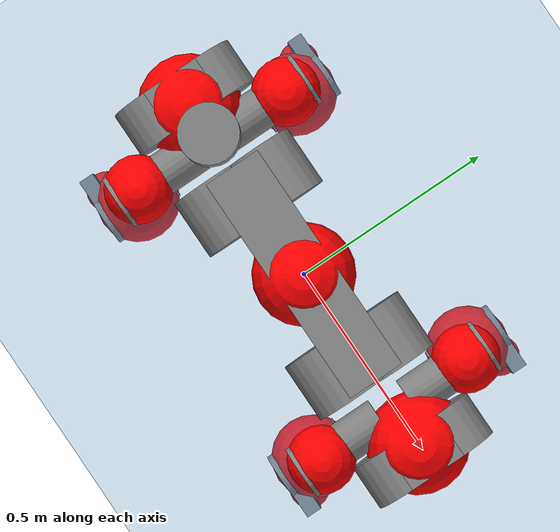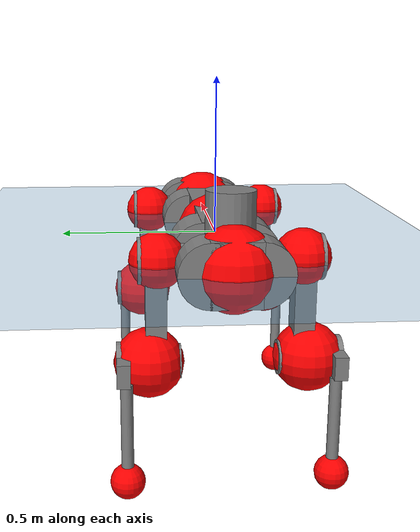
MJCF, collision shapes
<mujoco model="anymal_c">
  <compiler angle="radian" assetdir="assets" balanceinertia="true" inertiafromgeom="false"/>

  <option timestep="0.005" density="1.2" viscosity="2e-05"/>

  <size nkey="1"/>

  <visual>
    <quality shadowsize="8192"/>
    <map shadowclip="0.5"/>
  </visual>

  <default>
    <default class="/">
      <material specular="0" shininess="0.25"/>
      <geom contype="0" conaffinity="0" group="1" solref="-1000 -80"/>
      <site size="0.01 0.005 0.005" group="5"/>
      <general forcelimited="true" forcerange="-80 80" biastype="affine" gainprm="80" biasprm="0 -80 -2"/>
      <default class="anymal_c">
        <joint armature="0.01" damping="0.01" frictionloss="0.1"/>
        <default class="visual">
          <geom type="mesh" group="2"/>
          <default class="visual_zflip"/>
        </default>
        <default class="collision">
          <geom type="cylinder" group="3"/>
          <default class="foot">
            <geom size="0.03 0 0" type="sphere" condim="6" priority="1" friction="0.8 0.02 0.01" solimp="0.015 1 0.03"/>
          </default>
        </default>
      </default>
      <default class="reward_collision_sphere">
        <geom group="5" rgba="1 0 0 1"/>
      </default>
    </default>
  </default>

  <asset>
    <texture type="skybox" colorspace="auto" name="//unnamed_texture_0" builtin="gradient" rgb1="0.95 0.95 0.95" rgb2="0.95 0.95 0.95" width="100" height="600"/>
    <texture type="2d" colorspace="auto" name="texplane" builtin="checker" rgb1="0.345 0.575 0.748" rgb2="0.345 0.575 0.748" markrgb="1 1 1" width="512" height="512"/>
    <texture type="2d" colorspace="linear" name="base" file="base.png"/>
    <texture type="2d" colorspace="linear" name="top_shell" file="top_shell.png"/>
    <texture type="2d" colorspace="linear" name="bottom_shell" file="bottom_shell.png"/>
    <texture type="2d" colorspace="linear" name="remote" file="remote.png"/>
    <texture type="2d" colorspace="linear" name="hatch" file="hatch.png"/>
    <texture type="2d" colorspace="linear" name="handle" file="handle.png"/>
    <texture type="2d" colorspace="linear" name="face" file="face.png"/>
    <texture type="2d" colorspace="linear" name="battery" file="battery.png"/>
    <texture type="2d" colorspace="linear" name="lidar_cage" file="lidar_cage.png"/>
    <texture type="2d" colorspace="linear" name="depth_camera" file="depth_camera.png"/>
    <texture type="2d" colorspace="linear" name="wide_angle_camera" file="wide_angle_camera.png"/>
    <texture type="2d" colorspace="linear" name="lidar" file="lidar.png"/>
    <texture type="2d" colorspace="linear" name="drive" file="drive.png"/>
    <texture type="2d" colorspace="linear" name="hip_l" file="hip_l.png"/>
    <texture type="2d" colorspace="linear" name="shank_l" file="shank_l.png"/>
    <texture type="2d" colorspace="linear" name="foot" file="foot.png"/>
    <texture type="2d" colorspace="linear" name="thigh" file="thigh.png"/>
    <texture type="2d" colorspace="linear" name="shank_r" file="shank_r.png"/>
    <texture type="2d" colorspace="linear" name="hip_r" file="hip_r.png"/>
    <material name="MatPlane" class="/" texture="texplane" texuniform="true" texrepeat="2 2" specular="0.9" shininess="0.5"/>
    <material name="black_plastic" class="/" rgba="0.007 0.007 0.007 1"/>
    <material name="green" class="/" rgba="0.052 0.178 0.033 1"/>
    <material name="red" class="/" rgba="0.178 0.006 0.005 1"/>
    <material name="yellow" class="/" rgba="0.178 0.119 0.006 1"/>
    <material name="lwl" class="/" rgba="0.8 0.8 0.8 1"/>
    <material name="base" class="/" texture="base"/>
    <material name="top_shell" class="/" texture="top_shell"/>
    <material name="bottom_shell" class="/" texture="bottom_shell"/>
    <material name="hip_l" class="/" texture="hip_l"/>
    <material name="thigh" class="/" texture="thigh"/>
    <material name="shank_l" class="/" texture="shank_l"/>
    <material name="foot" class="/" texture="foot"/>
    <material name="hip_r" class="/" texture="hip_r"/>
    <material name="shank" class="/" texture="shank_r"/>
    <material name="hatch" class="/" texture="hatch"/>
    <material name="remote" class="/" texture="remote"/>
    <material name="handle" class="/" texture="handle"/>
    <material name="face" class="/" texture="face"/>
    <material name="depth_camera" class="/" texture="depth_camera"/>
    <material name="wide_angle_camera" class="/" texture="wide_angle_camera"/>
    <material name="battery" class="/" texture="battery"/>
    <material name="lidar_cage" class="/" texture="lidar_cage"/>
    <material name="lidar" class="/" texture="lidar"/>
    <material name="drive" class="/" texture="drive"/>
    <mesh name="base_0" class="/" file="base_0.obj"/>
    <mesh name="base_1" class="/" file="base_1.obj"/>
    <mesh name="base_2" class="/" file="base_2.obj"/>
    <mesh name="base_3" class="/" file="base_3.obj"/>
    <mesh name="base_4" class="/" file="base_4.obj"/>
    <mesh name="base_5" class="/" file="base_5.obj"/>
    <mesh name="top_shell" class="/" file="top_shell.obj"/>
    <mesh name="bottom_shell" class="/" file="bottom_shell.obj"/>
    <mesh name="remote" class="/" file="remote.obj"/>
    <mesh name="handle" class="/" file="handle.obj"/>
    <mesh name="face" class="/" file="face.obj"/>
    <mesh name="wide_angle_camera" class="/" file="wide_angle_camera.obj"/>
    <mesh name="depth_camera" class="/" file="depth_camera.obj"/>
    <mesh name="battery" class="/" file="battery.obj"/>
    <mesh name="lidar_cage" class="/" file="lidar_cage.obj"/>
    <mesh name="lidar" class="/" file="lidar.obj"/>
    <mesh name="drive" class="/" file="drive.obj"/>
    <mesh name="hip_l" class="/" file="hip_l.obj"/>
    <mesh name="thigh" class="/" file="thigh.obj"/>
    <mesh name="shank_l" class="/" file="shank_l.obj"/>
    <mesh name="foot" class="/" file="foot.obj"/>
    <mesh name="hip_r" class="/" file="hip_r.obj"/>
    <mesh name="hatch" class="/" file="hatch.obj"/>
    <mesh name="shank_r" class="/" file="shank_r.obj"/>
  </asset>

  <worldbody>
    <geom name="floor" class="/" size="100 100 0.125" type="plane" group="0" material="MatPlane"/>
    <light name="toplight_shadow" class="/" pos="0 0 5" dir="0.0990148 0.0990148 -0.990148" type="directional" ambient="0.04 0.04 0.04" diffuse="0.55 0.55 0.55" specular="0.12 0.12 0.12"/>
    <light name="toplight_fill" class="/" pos="0 0 5" dir="0.0990148 0.0990148 -0.990148" type="directional" castshadow="false" ambient="0.04 0.04 0.04" diffuse="0.3 0.3 0.3" specular="0.08 0.08 0.08"/>
    <body name="trunk" childclass="anymal_c" pos="-0.000299403 -0.000103245 0.00126836" quat="0.999999 0.000749857 0.000175355 0.000666247">
      <inertial pos="0.00147229 -0.00247155 0.0503831" quat="0.499612 0.499674 0.500627 0.500086" mass="21.7631" diaginertia="0.896905 0.524835 0.304451"/>
      <joint name="//unnamed_joint_0" type="free" armature="0" damping="0" frictionloss="0"/>
      <geom name="//unnamed_geom_1" class="visual" material="green" mesh="base_0"/>
      <geom name="//unnamed_geom_2" class="visual" material="yellow" mesh="base_1"/>
      <geom name="//unnamed_geom_3" class="visual" material="red" mesh="base_2"/>
      <geom name="//unnamed_geom_4" class="visual" material="black_plastic" mesh="base_3"/>
      <geom name="//unnamed_geom_5" class="visual" material="lwl" mesh="base_4"/>
      <geom name="//unnamed_geom_6" class="visual" material="base" mesh="base_5"/>
      <geom name="trunk_1" class="collision" size="0.300645 0.0725695 0.0933036" type="box"/>
      <geom name="trunk_2" class="collision" size="0.0933036 0.0751612" pos="0.23284 0.0677258 0" quat="0.707107 0 0.707107 0"/>
      <geom name="trunk_3" class="collision" size="0.0933036 0.0751612" pos="-0.23284 0.0677258 0" quat="0.707107 0 0.707107 0"/>
      <geom name="trunk_4" class="collision" size="0.0933036 0.0751612" pos="0.23284 -0.0677258 0" quat="0.707107 0 0.707107 0"/>
      <geom name="trunk_5" class="collision" size="0.0933036 0.0751612" pos="-0.23284 -0.0677258 0" quat="0.707107 0 0.707107 0"/>
      <geom name="//unnamed_geom_12" class="visual" material="top_shell" mesh="top_shell"/>
      <geom name="//unnamed_geom_13" class="visual" material="bottom_shell" mesh="bottom_shell"/>
      <geom name="//unnamed_geom_14" class="visual" material="remote" mesh="remote"/>
      <geom name="//unnamed_geom_15" class="visual" material="handle" mesh="handle"/>
      <geom name="//unnamed_geom_16" class="visual" pos="0.443733 0 0" quat="1 0 0 0" material="face" mesh="face"/>
      <geom name="trunk_6" class="collision" size="0.0570189 0.0725695 0.0933036" pos="0.502612 0 0" type="box"/>
      <geom name="//unnamed_geom_18" class="collision" size="0.0933036 0.0570189" pos="0.502612 0.0677258 0" quat="0.707107 0 0.707107 0"/>
      <geom name="//unnamed_geom_19" class="collision" size="0.0933036 0.0570189" pos="0.502612 -0.0677258 0" quat="0.707107 0 0.707107 0"/>
      <geom name="//unnamed_geom_20" class="visual" pos="0.494209 0 -0.0313166" quat="0.965926 0 0.258819 0" material="depth_camera" mesh="depth_camera"/>
      <geom name="//unnamed_geom_21" class="visual" pos="0.54918 0 0.0160491" material="wide_angle_camera" mesh="wide_angle_camera"/>
      <geom name="//unnamed_geom_22" class="visual_zflip" pos="-0.443733 0 0" quat="0 0 0 1" material="face" mesh="face"/>
      <geom name="trunk_7" class="collision" size="0.0570189 0.0725695 0.0933036" pos="-0.502612 0 0" quat="0 0 0 1" type="box"/>
      <geom name="//unnamed_geom_24" class="collision" size="0.0933036 0.0570189" pos="-0.502612 -0.0677258 0" quat="0 -0.707107 0 0.707107"/>
      <geom name="//unnamed_geom_25" class="collision" size="0.0933036 0.0570189" pos="-0.502612 0.0677258 0" quat="0 -0.707107 0 0.707107"/>
      <geom name="//unnamed_geom_26" class="visual" pos="-0.494209 0 -0.0313166" quat="0 -0.258819 0 0.965926" material="depth_camera" mesh="depth_camera"/>
      <geom name="//unnamed_geom_27" class="visual_zflip" pos="-0.54918 0 0.0160491" quat="0 0 0 1" material="wide_angle_camera" mesh="wide_angle_camera"/>
      <geom name="//unnamed_geom_28" class="visual" material="battery" mesh="battery"/>
      <geom name="//unnamed_geom_29" class="visual" pos="0 0.0726242 0.0311322" quat="0.683013 -0.183013 0.183013 0.683013" material="depth_camera" mesh="depth_camera"/>
      <geom name="//unnamed_geom_30" class="visual" pos="0 -0.0726242 0.0311322" quat="0.683013 0.183013 0.183013 -0.683013" material="depth_camera" mesh="depth_camera"/>
      <geom name="//unnamed_geom_31" class="visual" pos="-0.389672 0 0.078798" quat="1 0 0 0" material="lidar_cage" mesh="lidar_cage"/>
      <geom name="trunk_8" class="collision" size="0.0725695 0.0622024" pos="-0.389672 0 0.143123"/>
      <geom name="//unnamed_geom_33" class="visual" pos="-0.389672 -4.04723e-05 0.15245" quat="0.707107 0 0 -0.707107" material="lidar" mesh="lidar"/>
      <geom name="//unnamed_geom_34" class="visual" pos="0.321051 0.100658 -1.80385e-09" quat="0.258819 0.965926 0 0" material="drive" mesh="drive"/>
      <geom name="//unnamed_geom_35" class="visual" pos="0.321051 -0.100658 1.80385e-09" quat="0.258819 -0.965926 0 0" material="drive" mesh="drive"/>
      <geom name="//unnamed_geom_36" class="visual" pos="-0.321051 0.100658 1.80385e-09" quat="0 0 0.965926 -0.258819" material="drive" mesh="drive"/>
      <geom name="//unnamed_geom_37" class="visual" pos="-0.321051 -0.100658 -1.80385e-09" quat="0 0 -0.965926 -0.258819" material="drive" mesh="drive"/>
      <geom name="//unnamed_geom_38" class="visual" pos="0.124181 0 0.078262" quat="1 0 0 0" material="hatch" mesh="hatch"/>
      <geom name="//unnamed_geom_39" class="reward_collision_sphere" size="0.124405"/>
      <geom name="//unnamed_geom_40" class="reward_collision_sphere" size="0.124405" pos="0.481737 0 0"/>
      <geom name="//unnamed_geom_41" class="reward_collision_sphere" size="0.124405" pos="-0.481737 0 0"/>
      <site name="imu" pos="0.276794 0.00699957 0.0390572" size="0.0103671"/>
      <camera name="track" pos="0 -1.93502 0" quat="0.707107 0.707107 0 0" mode="trackcom"/>
      <camera name="ego_camera" pos="0.481737 0 -0.0428833" quat="-0.5 -0.5 0.5 0.5"/>
      <body name="LF_HIP" pos="0.318661 0.0979754 -0.00146929" quat="0.258539 0.966001 0.000365817 0.000137785">
        <inertial pos="0.0606479 -0.0173309 -0.00770437" quat="-0.127049 0.709805 -0.134341 0.679697" mass="3.14481" diaginertia="0.00815993 0.00397058 0.00457655"/>
        <joint name="LF_HAA" pos="0 0 0" axis="0.999995 0.00296418 0.00127375" range="-0.722888 0.525576" armature="0.0101507" damping="0.0242462" frictionloss="0.089029"/>
        <geom name="//unnamed_geom_42" class="visual" pos="0 -0.000106113 1.74289e-05" quat="0.258819 -0.965926 0 0" material="hip_l" mesh="hip_l"/>
        <geom name="//unnamed_geom_43" class="visual" pos="0.0641246 -0.0763814 -0.0448723" quat="0.183013 -0.683013 0.683013 0.183013" material="drive" mesh="drive"/>
        <geom name="//unnamed_geom_44" class="collision" size="0.0518353 0.0725695" pos="0.0641246 -0.0115712 -0.00740272" quat="-0.353553 -0.612372 0.612372 -0.353553"/>
        <body name="LF_THIGH" pos="0.0619621 -0.0681451 -0.0434179" quat="0.183301 -0.682333 0.68339 0.183851">
          <inertial pos="0.0325476 2.13475e-05 -0.260835" quat="0.992826 -0.0168048 -0.0763785 0.0904411" mass="3.34168" diaginertia="0.0432204 0.0251792 0.00606147"/>
          <joint name="LF_HFE" pos="0 0 0" axis="0.999999 -0.000521425 0.00114494" stiffness="0.00439595" range="-3.0936 3.19431" armature="0.010221" damping="0.0217631" frictionloss="0.0902581"/>
          <geom name="//unnamed_geom_45" class="visual" pos="0.00204962 3.22971e-06 0" quat="0.707107 0 0 -0.707107" material="thigh" mesh="thigh"/>
          <geom name="//unnamed_geom_46" class="collision" size="0.0673859 0.0414683" pos="0.0428211 0 0" quat="0.5 0.5 -0.5 -0.5"/>
          <geom name="//unnamed_geom_47" class="collision" size="0.0388765 0.0311012 0.146501" pos="0.0321158 0 -0.1515" quat="0.707107 0 0 -0.707107" type="box"/>
          <geom name="//unnamed_geom_48" class="visual" pos="0.107374 0 -0.305543" quat="1 0 0 0" material="drive" mesh="drive"/>
          <geom name="//unnamed_geom_49" class="collision" size="0.0518353 0.0725695" pos="0.032437 0 -0.305543" quat="0.707107 0 0.707107 0"/>
          <geom name="//unnamed_geom_50" class="reward_collision_sphere" size="0.0829365" pos="0.0267632 0 0"/>
          <body name="LF_SHANK" pos="0.108553 0.00247009 -0.30407" quat="1 5.59644e-05 8.79833e-05 -6.06308e-05">
            <inertial pos="0.00533806 -0.0594525 -0.088702" quat="0.992894 -0.116174 -0.00244318 -0.0256616" mass="0.66476" diaginertia="0.0139268 0.00778977 0.00159203"/>
            <joint name="LF_KFE" pos="0 0 0" axis="0.999983 0.0033072 -0.00479764" range="-3.08449 3.14928" armature="0.0109478" damping="0.00396263" frictionloss="0.105832"/>
            <geom name="//unnamed_geom_51" class="visual" pos="0.000668335 0.00356359 0" quat="0.707107 0 0 -0.707107" material="shank_l" mesh="shank_l"/>
            <geom name="LF_kfe_act" class="collision" size="0.0622024 0.0207341" pos="0.0214105 0 0" quat="0.5 0.5 -0.5 -0.5"/>
            <geom name="//unnamed_geom_53" class="collision" size="0.0596096 0.0349888 0.0196974" pos="0.0214105 -0.0556309 0" quat="0.5 0.5 -0.5 -0.5" type="box"/>
            <geom name="//unnamed_geom_54" class="visual" pos="0.0139702 -0.0839442 -0.362331" quat="0.382683 0 0 -0.92388" material="foot" mesh="foot"/>
            <geom name="LF_calf" class="collision" size="0.0181424 0.146437" pos="0.0139704 -0.0850926 -0.181166" quat="0.707107 0 0 -0.707107"/>
            <geom name="LF_foot" class="foot" size="0.0307982" pos="0.0139704 -0.0850926 -0.33821" quat="0.707107 0 0 -0.707107"/>
            <geom name="//unnamed_geom_57" class="reward_collision_sphere" size="0.103671" pos="-0.0535264 0 0"/>
            <geom name="//unnamed_geom_58" class="reward_collision_sphere" size="0.0518353" pos="0.0139704 -0.0850926 -0.33821"/>
            <site name="LF_foot" class="foot" pos="0.0139704 -0.0850926 -0.33821" quat="0.707107 0 0 -0.707107" size="0.0103671"/>
          </body>
        </body>
      </body>
      <body name="RF_HIP" pos="0.319376 -0.101196 1.38918e-06" quat="0.25871 -0.965955 5.58278e-05 0.00011889">
        <inertial pos="0.05804 0.0139482 -0.0117867" quat="0.134171 0.684705 0.12539 0.705305" mass="3.10625" diaginertia="0.00788177 0.004244 0.0044547"/>
        <joint name="RF_HAA" pos="0 0 0" axis="0.999929 0.00685308 -0.00979698" range="-0.509288 0.724601" armature="0.0106891" damping="0" frictionloss="0.111201"/>
        <geom name="//unnamed_geom_59" class="visual" pos="0 0.000106112 1.74289e-05" quat="0.258819 0.965926 0 0" material="hip_r" mesh="hip_r"/>
        <geom name="//unnamed_geom_60" class="visual" pos="0.0641246 0.0763814 -0.0448723" quat="0.183013 0.683013 0.683013 -0.183013" material="drive" mesh="drive"/>
        <geom name="//unnamed_geom_61" class="collision" size="0.0518353 0.0725695" pos="0.0641246 0.0115712 -0.00740272" quat="-0.353553 0.612372 0.612372 0.353553"/>
        <body name="RF_THIGH" pos="0.0668815 0.068236 -0.0472929" quat="0.182636 0.683507 0.682867 -0.182086">
          <inertial pos="0.0350781 -0.000947679 -0.265701" quat="0.994135 -0.000328483 -0.0699405 0.0824901" mass="3.56142" diaginertia="0.0413136 0.0246551 0.00611618"/>
          <joint name="RF_HFE" pos="0 0 0" axis="1 -7.03299e-08 3.11796e-07" range="-3.11901 3.14913" armature="0.00904648" damping="0.0106947" frictionloss="0.113261"/>
          <geom name="//unnamed_geom_62" class="visual" pos="0.00204962 3.22971e-06 0" quat="0.707107 0 0 -0.707107" material="thigh" mesh="thigh"/>
          <geom name="//unnamed_geom_63" class="collision" size="0.0673859 0.0414683" pos="0.0428211 0 0" quat="0.5 0.5 0.5 0.5"/>
          <geom name="//unnamed_geom_64" class="collision" size="0.0388765 0.0311012 0.146501" pos="0.0321158 0 -0.1515" quat="0.707107 0 0 0.707107" type="box"/>
          <geom name="//unnamed_geom_65" class="visual" pos="0.107374 0 -0.305543" quat="1 0 0 0" material="drive" mesh="drive"/>
          <geom name="//unnamed_geom_66" class="collision" size="0.0518353 0.0725695" pos="0.032437 0 -0.305543" quat="0.707107 0 0.707107 0"/>
          <geom name="//unnamed_geom_67" class="reward_collision_sphere" size="0.0829365" pos="0.0267632 0 0"/>
          <body name="RF_SHANK" pos="0.104312 0.000749805 -0.306386" quat="0.999999 -0.00128156 -0.000157749 2.85253e-05">
            <inertial pos="0.0032465 0.0594001 -0.0862148" quat="0.992259 0.119858 0.000908425 0.0324814" mass="0.700837" diaginertia="0.0151168 0.00789102 0.00164783"/>
            <joint name="RF_KFE" pos="0 0 0" axis="0.999996 0.0028689 -0.000516688" range="-3.17848 3.08268" armature="0.011932" damping="0.019128" frictionloss="0.114372"/>
            <geom name="//unnamed_geom_68" class="visual" pos="0.000668331 -0.00356359 0" quat="0.707107 0 0 0.707107" material="shank" mesh="shank_r"/>
            <geom name="RF_kfe_act" class="collision" size="0.0622024 0.0207341" pos="0.0214105 0 0" quat="0.5 0.5 0.5 0.5"/>
            <geom name="//unnamed_geom_70" class="collision" size="0.0596096 0.0349888 0.0196974" pos="0.0214105 0.0556309 0" quat="0.5 0.5 0.5 0.5" type="box"/>
            <geom name="//unnamed_geom_71" class="visual" pos="0.0139705 0.0839442 -0.362331" quat="0.382683 0 0 0.92388" material="foot" mesh="foot"/>
            <geom name="RF_calf" class="collision" size="0.0181424 0.146437" pos="0.0139704 0.0850926 -0.181166" quat="0.707107 0 0 0.707107"/>
            <geom name="RF_foot" class="foot" size="0.0279228" pos="0.0139704 0.0850926 -0.33821" quat="0.707107 0 0 0.707107"/>
            <geom name="//unnamed_geom_74" class="reward_collision_sphere" size="0.103671" pos="-0.0535264 0 0"/>
            <geom name="//unnamed_geom_75" class="reward_collision_sphere" size="0.0518353" pos="0.0139704 0.0850926 -0.33821"/>
            <site name="RF_foot" class="foot" pos="0.0139704 0.0850926 -0.33821" quat="0.707107 0 0 0.707107" size="0.0103671"/>
          </body>
        </body>
      </body>
      <body name="LH_HIP" pos="-0.318222 0.0983256 -0.00168818" quat="0.000275977 0.00020063 0.965933 -0.258792">
        <inertial pos="0.0607193 0.0174001 -0.0107255" quat="0.129284 0.68851 0.125718 0.702449" mass="3.16469" diaginertia="0.00854141 0.00427963 0.0046234"/>
        <joint name="LH_HAA" pos="0 0 0" axis="0.999896 -0.0144451 0.00014704" range="-0.500095 0.751874" armature="0.0110475" damping="0.000571212" frictionloss="0.102674"/>
        <geom name="//unnamed_geom_76" class="visual" pos="0 0.000106112 1.74289e-05" quat="-0.258819 -0.965926 0 0" material="hip_r" mesh="hip_r"/>
        <geom name="//unnamed_geom_77" class="visual" pos="0.0641246 0.0763814 -0.0448723" quat="0.183013 0.683013 0.683013 -0.183013" material="drive" mesh="drive"/>
        <geom name="//unnamed_geom_78" class="collision" size="0.0518353 0.0725695" pos="0.0641246 0.0115712 -0.00740272" quat="-0.353553 0.612372 0.612372 0.353553"/>
        <body name="LH_THIGH" pos="0.0631251 0.0686291 -0.0437521" quat="0.183151 0.683179 0.682761 -0.183195">
          <inertial pos="0.0318579 0.000978933 -0.265078" quat="0.992499 -0.00398841 -0.0820116 0.0905779" mass="3.22647" diaginertia="0.0402749 0.0253062 0.00582029"/>
          <joint name="LH_HFE" pos="0 0 0" axis="0.999998 -0.000641924 -0.0016844" stiffness="0.00885872" range="-3.19059 3.08343" armature="0.010163" damping="0" frictionloss="0.105357"/>
          <geom name="//unnamed_geom_79" class="visual" pos="0.00204962 3.22971e-06 0" quat="0.707107 0 0 -0.707107" material="thigh" mesh="thigh"/>
          <geom name="//unnamed_geom_80" class="collision" size="0.0673859 0.0414683" pos="0.0428211 0 0" quat="0.5 0.5 -0.5 -0.5"/>
          <geom name="//unnamed_geom_81" class="collision" size="0.0388765 0.0311012 0.146501" pos="0.0321158 0 -0.1515" quat="0.707107 0 0 -0.707107" type="box"/>
          <geom name="//unnamed_geom_82" class="visual" pos="0.107374 0 -0.305543" quat="1 0 0 0" material="drive" mesh="drive"/>
          <geom name="//unnamed_geom_83" class="collision" size="0.0518353 0.0725695" pos="0.032437 0 -0.305543" quat="0.707107 0 0.707107 0"/>
          <geom name="//unnamed_geom_84" class="reward_collision_sphere" size="0.0829365" pos="0.0267632 0 0"/>
          <body name="LH_SHANK" pos="0.106157 0.000454806 -0.307222" quat="1 3.84635e-05 2.6727e-05 -2.68709e-06">
            <inertial pos="0.00824338 0.0616352 -0.0874782" quat="0.994221 0.103379 0.00352234 0.0287071" mass="0.666831" diaginertia="0.013971 0.00818591 0.00162352"/>
            <joint name="LH_KFE" pos="0 0 0" axis="0.999999 0.000650068 -0.00103372" range="-3.09251 3.08304" armature="0.0114757" damping="0.0199618" frictionloss="0.0899032"/>
            <geom name="//unnamed_geom_85" class="visual" pos="0.000668331 -0.00356359 0" quat="-0.707107 0 0 -0.707107" material="shank" mesh="shank_r"/>
            <geom name="LH_kfe_act" class="collision" size="0.0622024 0.0207341" pos="0.0214105 0 0" quat="0.5 0.5 -0.5 -0.5"/>
            <geom name="//unnamed_geom_87" class="collision" size="0.0596096 0.0349888 0.0196974" pos="0.0214105 0.0556309 0" quat="0.5 0.5 -0.5 -0.5" type="box"/>
            <geom name="//unnamed_geom_88" class="visual" pos="0.0139705 0.0839442 -0.362331" quat="-0.382683 0 0 -0.92388" material="foot" mesh="foot"/>
            <geom name="LH_calf" class="collision" size="0.0181424 0.146437" pos="0.0139704 0.0850926 -0.181166" quat="0.707107 0 0 -0.707107"/>
            <geom name="LH_foot" class="foot" size="0.0355395" pos="0.0139704 0.0850926 -0.33821" quat="0.707107 0 0 -0.707107"/>
            <geom name="//unnamed_geom_91" class="reward_collision_sphere" size="0.103671" pos="-0.0535264 0 0"/>
            <geom name="//unnamed_geom_92" class="reward_collision_sphere" size="0.0518353" pos="0.0139704 0.0850926 -0.33821"/>
            <site name="LH_foot" class="foot" pos="0.0139704 0.0850926 -0.33821" quat="0.707107 0 0 -0.707107" size="0.0103671"/>
          </body>
        </body>
      </body>
      <body name="RH_HIP" pos="-0.319807 -0.101727 0.00224546" quat="0.000121047 4.36898e-05 -0.965975 -0.258634">
        <inertial pos="0.0579766 -0.0124509 -0.0108195" quat="-0.125052 0.71255 -0.133514 0.677354" mass="3.14754" diaginertia="0.00807419 0.00412224 0.00460074"/>
        <joint name="RH_HAA" pos="0 0 0" axis="0.999934 0.0113938 -0.00150517" range="-0.768995 0.543193" armature="0.00943256" damping="0" frictionloss="0.102616"/>
        <geom name="//unnamed_geom_93" class="visual" pos="0 -0.000106113 1.74289e-05" quat="-0.258819 0.965926 0 0" material="hip_l" mesh="hip_l"/>
        <geom name="//unnamed_geom_94" class="visual" pos="0.0641246 -0.0763814 -0.0448723" quat="-0.183013 0.683013 -0.683013 -0.183013" material="drive" mesh="drive"/>
        <geom name="//unnamed_geom_95" class="collision" size="0.0518353 0.0725695" pos="0.0641246 -0.0115712 -0.00740272" quat="0.353553 0.612372 -0.612372 0.353553"/>
        <body name="RH_THIGH" pos="0.0657098 -0.0684196 -0.0465899" quat="-0.182787 0.682324 -0.683902 -0.182487">
          <inertial pos="0.0326816 0.00253569 -0.263083" quat="0.993137 -0.00445343 -0.0805434 0.0846866" mass="3.18672" diaginertia="0.0396189 0.0247716 0.00579229"/>
          <joint name="RH_HFE" pos="0 0 0" axis="0.999998 0.00204644 -0.000178287" range="-3.0875 3.13247" armature="0.0106849" damping="0.0193322" frictionloss="0.101804"/>
          <geom name="//unnamed_geom_96" class="visual" pos="0.00204962 3.22971e-06 0" quat="0.707107 0 0 -0.707107" material="thigh" mesh="thigh"/>
          <geom name="//unnamed_geom_97" class="collision" size="0.0673859 0.0414683" pos="0.0428211 0 0" quat="0.5 0.5 0.5 0.5"/>
          <geom name="//unnamed_geom_98" class="collision" size="0.0388765 0.0311012 0.146501" pos="0.0321158 0 -0.1515" quat="0.707107 0 0 0.707107" type="box"/>
          <geom name="//unnamed_geom_99" class="visual" pos="0.107374 0 -0.305543" quat="1 0 0 0" material="drive" mesh="drive"/>
          <geom name="//unnamed_geom_100" class="collision" size="0.0518353 0.0725695" pos="0.032437 0 -0.305543" quat="0.707107 0 0.707107 0"/>
          <geom name="//unnamed_geom_101" class="reward_collision_sphere" size="0.0829365" pos="0.0267632 0 0"/>
          <body name="RH_SHANK" pos="0.106835 0.00255605 -0.305574" quat="0.999999 -5.60875e-05 -0.00031733 -0.000999598">
            <inertial pos="0.008634 -0.0610936 -0.0860461" quat="0.992249 -0.121522 -0.0134195 -0.0222251" mass="0.659444" diaginertia="0.0138617 0.00783166 0.0015371"/>
            <joint name="RH_KFE" pos="0 0 0" axis="0.999986 0.0032344 -0.00412837" range="-3.12186 3.18184" armature="0.0101248" damping="0.019544" frictionloss="0.114133"/>
            <geom name="//unnamed_geom_102" class="visual" pos="0.000668335 0.00356359 0" quat="0.707107 0 0 -0.707107" material="shank_l" mesh="shank_l"/>
            <geom name="RH_kfe_act" class="collision" size="0.0622024 0.0207341" pos="0.0214105 0 0" quat="0.5 0.5 0.5 0.5"/>
            <geom name="//unnamed_geom_104" class="collision" size="0.0596096 0.0349888 0.0196974" pos="0.0214105 -0.0556309 0" quat="0.5 0.5 0.5 0.5" type="box"/>
            <geom name="//unnamed_geom_105" class="visual" pos="0.0139702 -0.0839442 -0.362331" quat="0.382683 0 0 -0.92388" material="foot" mesh="foot"/>
            <geom name="RH_calf" class="collision" size="0.0181424 0.146437" pos="0.0139704 -0.0850926 -0.181166" quat="0.707107 0 0 0.707107"/>
            <geom name="RH_foot" class="foot" size="0.0267482" pos="0.0139704 -0.0850926 -0.33821" quat="0.707107 0 0 0.707107"/>
            <geom name="//unnamed_geom_108" class="reward_collision_sphere" size="0.103671" pos="-0.0535264 0 0"/>
            <geom name="//unnamed_geom_109" class="reward_collision_sphere" size="0.0518353" pos="0.0139704 -0.0850926 -0.33821"/>
            <site name="RH_foot" class="foot" pos="0.0139704 -0.0850926 -0.33821" quat="0.707107 0 0 0.707107" size="0.0103671"/>
          </body>
        </body>
      </body>
    </body>
  </worldbody>

  <contact>
    <pair class="/" geom1="floor" geom2="LF_foot" name="//unnamed_contact_0"/>
    <pair class="/" geom1="floor" geom2="RF_foot" name="//unnamed_contact_1"/>
    <pair class="/" geom1="floor" geom2="LH_foot" name="//unnamed_contact_2"/>
    <pair class="/" geom1="floor" geom2="RH_foot" name="//unnamed_contact_3"/>
  </contact>

  <actuator>
    <general name="LF_HAA" class="/" joint="LF_HAA" forcerange="-74.9476 74.9476" gainprm="77.7578" biasprm="0 -77.7578 -2.04909"/>
    <general name="LF_HFE" class="/" joint="LF_HFE" forcerange="-77.0055 77.0055" gainprm="77.7578" biasprm="0 -77.7578 -2.04909"/>
    <general name="LF_KFE" class="/" joint="LF_KFE" forcerange="-80.2572 80.2572" gainprm="77.7578" biasprm="0 -77.7578 -2.04909"/>
    <general name="RF_HAA" class="/" joint="RF_HAA" forcerange="-81.6259 81.6259" gainprm="77.7578" biasprm="0 -77.7578 -2.04909"/>
    <general name="RF_HFE" class="/" joint="RF_HFE" forcerange="-93.265 93.265" gainprm="77.7578" biasprm="0 -77.7578 -2.04909"/>
    <general name="RF_KFE" class="/" joint="RF_KFE" forcerange="-84.5135 84.5135" gainprm="77.7578" biasprm="0 -77.7578 -2.04909"/>
    <general name="LH_HAA" class="/" joint="LH_HAA" forcerange="-83.7339 83.7339" gainprm="77.7578" biasprm="0 -77.7578 -2.04909"/>
    <general name="LH_HFE" class="/" joint="LH_HFE" forcerange="-74.6359 74.6359" gainprm="77.7578" biasprm="0 -77.7578 -2.04909"/>
    <general name="LH_KFE" class="/" joint="LH_KFE" forcerange="-89.4816 89.4816" gainprm="77.7578" biasprm="0 -77.7578 -2.04909"/>
    <general name="RH_HAA" class="/" joint="RH_HAA" forcerange="-86.1271 86.1271" gainprm="77.7578" biasprm="0 -77.7578 -2.04909"/>
    <general name="RH_HFE" class="/" joint="RH_HFE" forcerange="-91.1506 91.1506" gainprm="77.7578" biasprm="0 -77.7578 -2.04909"/>
    <general name="RH_KFE" class="/" joint="RH_KFE" forcerange="-82.7498 82.7498" gainprm="77.7578" biasprm="0 -77.7578 -2.04909"/>
  </actuator>

  <sensor>
    <gyro site="imu" name="imu_angular_velocity"/>
    <velocimeter site="imu" name="imu_linear_velocity"/>
    <framelinvel objtype="site" objname="LF_foot" name="LF_foot_global_linear_velocity"/>
    <framelinvel objtype="site" objname="RF_foot" name="RF_foot_global_linear_velocity"/>
    <framelinvel objtype="site" objname="LH_foot" name="LH_foot_global_linear_velocity"/>
    <framelinvel objtype="site" objname="RH_foot" name="RH_foot_global_linear_velocity"/>
  </sensor>

  <keyframe>
    <key name="home" qpos="0 0 0.55 1 0 0 0 0 0.4 -0.8 0 -0.4 0.8 0 -0.4 0.8 0 0.4 -0.8"/>
  </keyframe>
</mujoco>
